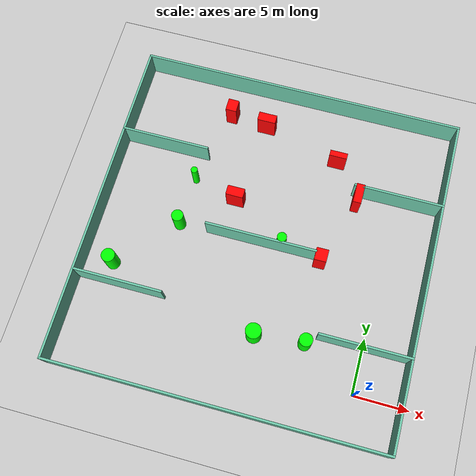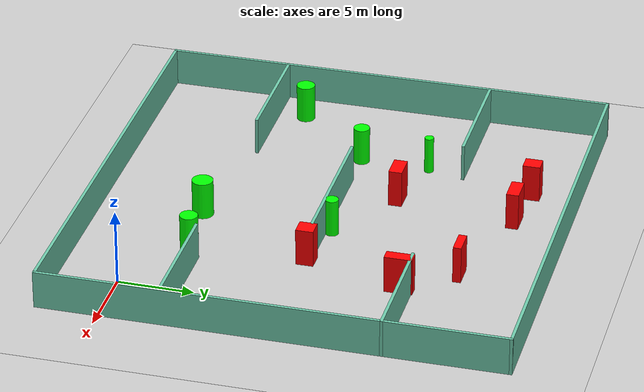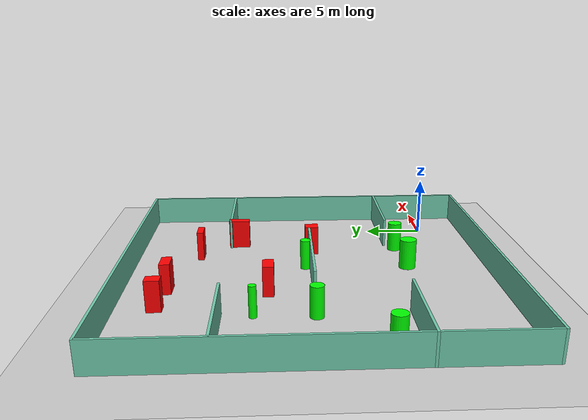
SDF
<sdf version="1.7">
 <world name="default">
  <light name="sun" type="directional">
   <pose>0 0 10 0 -0 0</pose>
   <diffuse>0.8 0.8 0.8 1</diffuse>
   <specular>0.2 0.2 0.2 1</specular>
   <attenuation>
    <range>1000</range>
    <constant>0.9</constant>
    <linear>0.01</linear>
    <quadratic>0.001</quadratic>
   </attenuation>
   <direction>-0.5 0.1 -0.9</direction>
   <spot><inner_angle>0</inner_angle><outer_angle>0</outer_angle><falloff>0</falloff></spot>
  </light>
  <model name="ground_plane">
   <static>1</static>
   <link name="link">
    <collision name="collision">
     <geometry><plane><normal>0 0 1</normal><size>100 100</size></plane></geometry>
     <surface>
      <contact><collide_bitmask>65535</collide_bitmask></contact>
      <friction><ode><mu>100</mu><mu2>50</mu2></ode></friction>
     </surface>
    </collision>
    <visual name="visual">
     <cast_shadows>0</cast_shadows>
     <geometry><plane><normal>0 0 1</normal><size>100 100</size></plane></geometry>
     <material>
      <script><uri>file://media/materials/scripts/gazebo.material</uri><name>Gazebo/Grey</name></script>
     </material>
    </visual>
   </link>
  </model>
  <gravity>0 0 -9.8</gravity>
  <magnetic_field>6e-06 2.3e-05 -4.2e-05</magnetic_field>
  <atmosphere type="adiabatic"/>
  <physics type="ode">
   <max_step_size>0.001</max_step_size>
   <real_time_factor>1</real_time_factor>
   <real_time_update_rate>1000</real_time_update_rate>
  </physics>
  <scene><ambient>0.4 0.4 0.4 1</ambient><background>0.7 0.7 0.7 1</background><shadows>1</shadows></scene>
  <spherical_coordinates>
   <surface_model>EARTH_WGS84</surface_model>
   <latitude_deg>0</latitude_deg>
   <longitude_deg>0</longitude_deg>
   <elevation>0</elevation>
   <heading_deg>0</heading_deg>
  </spherical_coordinates>
  <model name="my_base_walls">
   <link name="Wall_10">
    <collision name="Wall_10_Collision">
     <geometry><box><size>8.2 0.2 2.5</size></box></geometry>
     <pose>0 0 1.25 0 -0 0</pose>
    </collision>
    <visual name="Wall_10_Visual">
     <pose>0 0 1.25 0 -0 0</pose>
     <geometry><box><size>8.2 0.2 2.5</size></box></geometry>
     <material>
      <script><uri>file://media/materials/scripts/gazebo.material</uri><name>Gazebo/Grey</name></script>
      <ambient>0.435294 0.796078 0.67451 1</ambient>
     </material>
     <meta><layer>0</layer></meta>
    </visual>
    <pose>-11 -7 0 0 -0 0</pose>
   </link>
   <link name="Wall_12">
    <collision name="Wall_12_Collision">
     <geometry><box><size>8.2 0.2 2.5</size></box></geometry>
     <pose>0 0 1.25 0 -0 0</pose>
    </collision>
    <visual name="Wall_12_Visual">
     <pose>0 0 1.25 0 -0 0</pose>
     <geometry><box><size>8.2 0.2 2.5</size></box></geometry>
     <material>
      <script><uri>file://media/materials/scripts/gazebo.material</uri><name>Gazebo/Grey</name></script>
      <ambient>0.435294 0.796078 0.67451 1</ambient>
     </material>
     <meta><layer>0</layer></meta>
    </visual>
    <pose>-11 7 0 0 -0 0</pose>
   </link>
   <link name="Wall_14">
    <collision name="Wall_14_Collision">
     <geometry><box><size>8.2 0.2 2.5</size></box></geometry>
     <pose>0 0 1.25 0 -0 0</pose>
    </collision>
    <visual name="Wall_14_Visual">
     <pose>0 0 1.25 0 -0 0</pose>
     <geometry><box><size>8.2 0.2 2.5</size></box></geometry>
     <material>
      <script><uri>file://media/materials/scripts/gazebo.material</uri><name>Gazebo/Grey</name></script>
      <ambient>0.435294 0.796078 0.67451 1</ambient>
     </material>
     <meta><layer>0</layer></meta>
    </visual>
    <pose>11 7 0 0 -0 3.14159</pose>
   </link>
   <link name="Wall_16">
    <collision name="Wall_16_Collision">
     <geometry><box><size>10.2 0.2 2.5</size></box></geometry>
     <pose>0 0 1.25 0 -0 0</pose>
    </collision>
    <visual name="Wall_16_Visual">
     <pose>0 0 1.25 0 -0 0</pose>
     <geometry><box><size>10.2 0.2 2.5</size></box></geometry>
     <material>
      <script><uri>file://media/materials/scripts/gazebo.material</uri><name>Gazebo/Grey</name></script>
      <ambient>0.435294 0.796078 0.67451 1</ambient>
     </material>
     <meta><layer>0</layer></meta>
    </visual>
    <pose>0 0 0 0 -0 3.14159</pose>
   </link>
   <link name="Wall_2">
    <collision name="Wall_2_Collision">
     <geometry><box><size>30.2 0.2 2.5</size></box></geometry>
     <pose>0 0 1.25 0 -0 0</pose>
    </collision>
    <visual name="Wall_2_Visual">
     <pose>0 0 1.25 0 -0 0</pose>
     <geometry><box><size>30.2 0.2 2.5</size></box></geometry>
     <material>
      <script><uri>file://media/materials/scripts/gazebo.material</uri><name>Gazebo/Grey</name></script>
      <ambient>0.435294 0.796078 0.67451 1</ambient>
     </material>
     <meta><layer>0</layer></meta>
    </visual>
    <pose>0 -15 0 0 -0 3.14159</pose>
   </link>
   <link name="Wall_3">
    <collision name="Wall_3_Collision">
     <geometry><box><size>30.2 0.2 2.5</size></box></geometry>
     <pose>0 0 1.25 0 -0 0</pose>
    </collision>
    <visual name="Wall_3_Visual">
     <pose>0 0 1.25 0 -0 0</pose>
     <geometry><box><size>30.2 0.2 2.5</size></box></geometry>
     <material>
      <script><uri>file://media/materials/scripts/gazebo.material</uri><name>Gazebo/Grey</name></script>
      <ambient>0.435294 0.796078 0.67451 1</ambient>
     </material>
     <meta><layer>0</layer></meta>
    </visual>
    <pose>-15 0 0 0 -0 1.5708</pose>
   </link>
   <link name="Wall_4">
    <collision name="Wall_4_Collision">
     <geometry><box><size>30.2 0.2 2.5</size></box></geometry>
     <pose>0 0 1.25 0 -0 0</pose>
    </collision>
    <visual name="Wall_4_Visual">
     <pose>0 0 1.25 0 -0 0</pose>
     <geometry><box><size>30.2 0.2 2.5</size></box></geometry>
     <material>
      <script><uri>file://media/materials/scripts/gazebo.material</uri><name>Gazebo/Grey</name></script>
      <ambient>0.435294 0.796078 0.67451 1</ambient>
     </material>
     <meta><layer>0</layer></meta>
    </visual>
    <pose>0 15 0 0 -0 0</pose>
   </link>
   <link name="Wall_6">
    <collision name="Wall_6_Collision">
     <geometry><box><size>30.2 0.2 2.5</size></box></geometry>
     <pose>0 0 1.25 0 -0 0</pose>
    </collision>
    <visual name="Wall_6_Visual">
     <pose>0 0 1.25 0 -0 0</pose>
     <geometry><box><size>30.2 0.2 2.5</size></box></geometry>
     <material>
      <script><uri>file://media/materials/scripts/gazebo.material</uri><name>Gazebo/Grey</name></script>
      <ambient>0.435294 0.796078 0.67451 1</ambient>
     </material>
     <meta><layer>0</layer></meta>
    </visual>
    <pose>15 0 0 0 -0 1.5708</pose>
   </link>
   <link name="Wall_8">
    <collision name="Wall_8_Collision">
     <geometry><box><size>8.2 0.2 2.5</size></box></geometry>
     <pose>0 0 1.25 0 -0 0</pose>
    </collision>
    <visual name="Wall_8_Visual">
     <pose>0 0 1.25 0 -0 0</pose>
     <geometry><box><size>8.2 0.2 2.5</size></box></geometry>
     <material>
      <script><uri>file://media/materials/scripts/gazebo.material</uri><name>Gazebo/Grey</name></script>
      <ambient>0.435294 0.796078 0.67451 1</ambient>
     </material>
     <meta><layer>0</layer></meta>
    </visual>
    <pose>11 -7 0 0 -0 3.14159</pose>
   </link>
   <static>1</static>
   <pose>-11 11 0 0 -0 0</pose>
  </model>
  <model name="cylinder1">
   <static>1</static>
   <link name="link">
    <inertial>
     <mass>1</mass>
     <inertia><ixx>0.5</ixx><ixy>0</ixy><ixz>0</ixz><iyy>0.5</iyy><iyz>0</iyz><izz>1</izz></inertia>
    </inertial>
    <collision name="collision">
     <geometry><cylinder><radius>0.5348699027360294</radius><length>2.5</length></cylinder></geometry>
    </collision>
    <visual name="visual">
     <geometry><cylinder><radius>0.5348699027360294</radius><length>2.5</length></cylinder></geometry>
     <material>
      <ambient>0 1 0 1</ambient>
      <diffuse>0 1 0 1</diffuse>
      <specular>0.1 0.1 0.1 1</specular>
      <emissive>0 0 0 0</emissive>
     </material>
    </visual>
   </link>
   <pose>-18.671776678141992 10.988625183697344 1.25 0 0 0</pose>
  </model>
  <model name="cylinder2">
   <static>1</static>
   <link name="link">
    <inertial>
     <mass>1</mass>
     <inertia><ixx>0.5</ixx><ixy>0</ixy><ixz>0</ixz><iyy>0.5</iyy><iyz>0</iyz><izz>1</izz></inertia>
    </inertial>
    <collision name="collision">
     <geometry><cylinder><radius>0.303157773803253</radius><length>2.5</length></cylinder></geometry>
    </collision>
    <visual name="visual">
     <geometry><cylinder><radius>0.303157773803253</radius><length>2.5</length></cylinder></geometry>
     <material>
      <ambient>0 1 0 1</ambient>
      <diffuse>0 1 0 1</diffuse>
      <specular>0.1 0.1 0.1 1</specular>
      <emissive>0 0 0 0</emissive>
     </material>
    </visual>
   </link>
   <pose>-18.49860591945898 15.598017882150085 1.25 0 0 0</pose>
  </model>
  <model name="cylinder3">
   <static>1</static>
   <link name="link">
    <inertial>
     <mass>1</mass>
     <inertia><ixx>0.5</ixx><ixy>0</ixy><ixz>0</ixz><iyy>0.5</iyy><iyz>0</iyz><izz>1</izz></inertia>
    </inertial>
    <collision name="collision">
     <geometry><cylinder><radius>0.4349724079607627</radius><length>2.5</length></cylinder></geometry>
    </collision>
    <visual name="visual">
     <geometry><cylinder><radius>0.4349724079607627</radius><length>2.5</length></cylinder></geometry>
     <material>
      <ambient>0 1 0 1</ambient>
      <diffuse>0 1 0 1</diffuse>
      <specular>0.1 0.1 0.1 1</specular>
      <emissive>0 0 0 0</emissive>
     </material>
    </visual>
   </link>
   <pose>-9.184186761090643 11.452043801156695 1.25 0 0 0</pose>
  </model>
  <model name="cylinder4">
   <static>1</static>
   <link name="link">
    <inertial>
     <mass>1</mass>
     <inertia><ixx>0.5</ixx><ixy>0</ixy><ixz>0</ixz><iyy>0.5</iyy><iyz>0</iyz><izz>1</izz></inertia>
    </inertial>
    <collision name="collision">
     <geometry><cylinder><radius>0.5917914799625498</radius><length>2.5</length></cylinder></geometry>
    </collision>
    <visual name="visual">
     <geometry><cylinder><radius>0.5917914799625498</radius><length>2.5</length></cylinder></geometry>
     <material>
      <ambient>0 1 0 1</ambient>
      <diffuse>0 1 0 1</diffuse>
      <specular>0.1 0.1 0.1 1</specular>
      <emissive>0 0 0 0</emissive>
     </material>
    </visual>
   </link>
   <pose>-4.965494476727091 3.2133308727891805 1.25 0 0 0</pose>
  </model>
  <model name="cylinder5">
   <static>1</static>
   <link name="link">
    <inertial>
     <mass>1</mass>
     <inertia><ixx>0.5</ixx><ixy>0</ixy><ixz>0</ixz><iyy>0.5</iyy><iyz>0</iyz><izz>1</izz></inertia>
    </inertial>
    <collision name="collision">
     <geometry><cylinder><radius>0.6950284362447615</radius><length>2.5</length></cylinder></geometry>
    </collision>
    <visual name="visual">
     <geometry><cylinder><radius>0.6950284362447615</radius><length>2.5</length></cylinder></geometry>
     <material>
      <ambient>0 1 0 1</ambient>
      <diffuse>0 1 0 1</diffuse>
      <specular>0.1 0.1 0.1 1</specular>
      <emissive>0 0 0 0</emissive>
     </material>
    </visual>
   </link>
   <pose>-9.427361519163156 2.798118581479436 1.25 0 0 0</pose>
  </model>
  <model name="cylinder6">
   <static>1</static>
   <link name="link">
    <inertial>
     <mass>1</mass>
     <inertia><ixx>0.5</ixx><ixy>0</ixy><ixz>0</ixz><iyy>0.5</iyy><iyz>0</iyz><izz>1</izz></inertia>
    </inertial>
    <collision name="collision">
     <geometry><cylinder><radius>0.6135813604492012</radius><length>2.5</length></cylinder></geometry>
    </collision>
    <visual name="visual">
     <geometry><cylinder><radius>0.6135813604492012</radius><length>2.5</length></cylinder></geometry>
     <material>
      <ambient>0 1 0 1</ambient>
      <diffuse>0 1 0 1</diffuse>
      <specular>0.1 0.1 0.1 1</specular>
      <emissive>0 0 0 0</emissive>
     </material>
    </visual>
   </link>
   <pose>-23.409320524996282 5.902905291315486 1.25 0 0 0</pose>
  </model>
  <model name="box1">
   <static>1</static>
   <link name="link">
    <inertial>
     <mass>1</mass>
     <inertia><ixx>0.083</ixx><ixy>0</ixy><ixz>0</ixz><iyy>0.083</iyy><iyz>0</iyz><izz>0.083</izz></inertia>
    </inertial>
    <collision name="collision">
     <geometry><box><size>1.008858773533448 1.1406435916650446 2.5</size></box></geometry>
    </collision>
    <visual name="visual">
     <geometry><box><size>1.008858773533448 1.1406435916650446 2.5</size></box></geometry>
     <material>
      <ambient>1 0 0 1</ambient>
      <diffuse>1 0 0 1</diffuse>
      <specular>0.1 0.1 0.1 1</specular>
      <emissive>0 0 0 0</emissive>
     </material>
    </visual>
    <sensor name="my_contact" type="contact">
     <contact><collision>box_collision</collision><topic>__default_topic__</topic></contact>
    </sensor>
   </link>
   <pose>-16.939757686403507 22.86077443308202 1.25 0 0 0</pose>
  </model>
  <model name="box2">
   <static>1</static>
   <link name="link">
    <inertial>
     <mass>1</mass>
     <inertia><ixx>0.083</ixx><ixy>0</ixy><ixz>0</ixz><iyy>0.083</iyy><iyz>0</iyz><izz>0.083</izz></inertia>
    </inertial>
    <collision name="collision">
     <geometry><box><size>0.7482432299333457 1.815555374299969 2.5</size></box></geometry>
    </collision>
    <visual name="visual">
     <geometry><box><size>0.7482432299333457 1.815555374299969 2.5</size></box></geometry>
     <material>
      <ambient>1 0 0 1</ambient>
      <diffuse>1 0 0 1</diffuse>
      <specular>0.1 0.1 0.1 1</specular>
      <emissive>0 0 0 0</emissive>
     </material>
    </visual>
    <sensor name="my_contact" type="contact">
     <contact><collision>box_collision</collision><topic>__default_topic__</topic></contact>
    </sensor>
   </link>
   <pose>-3.518312202022152 17.264281240503443 1.25 0 0 0</pose>
  </model>
  <model name="box3">
   <static>1</static>
   <link name="link">
    <inertial>
     <mass>1</mass>
     <inertia><ixx>0.083</ixx><ixy>0</ixy><ixz>0</ixz><iyy>0.083</iyy><iyz>0</iyz><izz>0.083</izz></inertia>
    </inertial>
    <collision name="collision">
     <geometry><box><size>1.625410469078698 0.531646247074371 2.5</size></box></geometry>
    </collision>
    <visual name="visual">
     <geometry><box><size>1.625410469078698 0.531646247074371 2.5</size></box></geometry>
     <material>
      <ambient>1 0 0 1</ambient>
      <diffuse>1 0 0 1</diffuse>
      <specular>0.1 0.1 0.1 1</specular>
      <emissive>0 0 0 0</emissive>
     </material>
    </visual>
    <sensor name="my_contact" type="contact">
     <contact><collision>box_collision</collision><topic>__default_topic__</topic></contact>
    </sensor>
   </link>
   <pose>-6.1500616097461975 20.49945641570849 1.25 0 0 0</pose>
  </model>
  <model name="box4">
   <static>1</static>
   <link name="link">
    <inertial>
     <mass>1</mass>
     <inertia><ixx>0.083</ixx><ixy>0</ixy><ixz>0</ixz><iyy>0.083</iyy><iyz>0</iyz><izz>0.083</izz></inertia>
    </inertial>
    <collision name="collision">
     <geometry><box><size>1.097819170512689 1.1402942528824418 2.5</size></box></geometry>
    </collision>
    <visual name="visual">
     <geometry><box><size>1.097819170512689 1.1402942528824418 2.5</size></box></geometry>
     <material>
      <ambient>1 0 0 1</ambient>
      <diffuse>1 0 0 1</diffuse>
      <specular>0.1 0.1 0.1 1</specular>
      <emissive>0 0 0 0</emissive>
     </material>
    </visual>
    <sensor name="my_contact" type="contact">
     <contact><collision>box_collision</collision><topic>__default_topic__</topic></contact>
    </sensor>
   </link>
   <pose>-5.440830091127037 10.779716249828521 1.25 0 0 0</pose>
  </model>
  <model name="box5">
   <static>1</static>
   <link name="link">
    <inertial>
     <mass>1</mass>
     <inertia><ixx>0.083</ixx><ixy>0</ixy><ixz>0</ixz><iyy>0.083</iyy><iyz>0</iyz><izz>0.083</izz></inertia>
    </inertial>
    <collision name="collision">
     <geometry><box><size>1.598228324241706 0.8829039352624701 2.5</size></box></geometry>
    </collision>
    <visual name="visual">
     <geometry><box><size>1.598228324241706 0.8829039352624701 2.5</size></box></geometry>
     <material>
      <ambient>1 0 0 1</ambient>
      <diffuse>1 0 0 1</diffuse>
      <specular>0.1 0.1 0.1 1</specular>
      <emissive>0 0 0 0</emissive>
     </material>
    </visual>
    <sensor name="my_contact" type="contact">
     <contact><collision>box_collision</collision><topic>__default_topic__</topic></contact>
    </sensor>
   </link>
   <pose>-14.310046842293492 14.522796558748528 1.25 0 0 0</pose>
  </model>
  <model name="box6">
   <static>1</static>
   <link name="link">
    <inertial>
     <mass>1</mass>
     <inertia><ixx>0.083</ixx><ixy>0</ixy><ixz>0</ixz><iyy>0.083</iyy><iyz>0</iyz><izz>0.083</izz></inertia>
    </inertial>
    <collision name="collision">
     <geometry><box><size>1.698878749713097 0.814570839690085 2.5</size></box></geometry>
    </collision>
    <visual name="visual">
     <geometry><box><size>1.698878749713097 0.814570839690085 2.5</size></box></geometry>
     <material>
      <ambient>1 0 0 1</ambient>
      <diffuse>1 0 0 1</diffuse>
      <specular>0.1 0.1 0.1 1</specular>
      <emissive>0 0 0 0</emissive>
     </material>
    </visual>
    <sensor name="my_contact" type="contact">
     <contact><collision>box_collision</collision><topic>__default_topic__</topic></contact>
    </sensor>
   </link>
   <pose>-13.443070774747913 22.445696988388587 1.25 0 0 0</pose>
  </model>
 </world>
</sdf>
